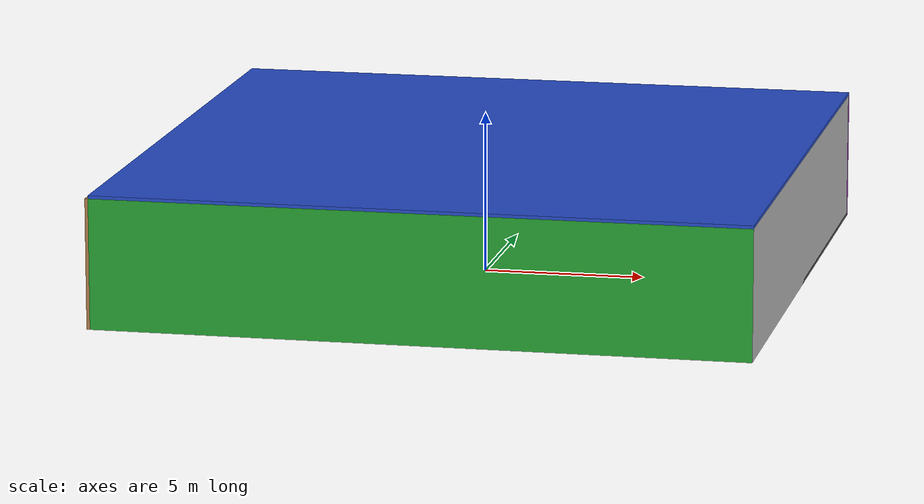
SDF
<sdf version="1.4">
 <world name="default">
  <physics type="ode">
   <max_step_size>0.001</max_step_size>
   <real_time_factor>1</real_time_factor>
   <real_time_update_rate>1000</real_time_update_rate>
   <gravity>0 0 -9.8</gravity>
  </physics>
  <scene><ambient>0.4 0.4 0.4 1</ambient><background>0.7 0.7 0.7 1</background><shadows>1</shadows></scene>
  <model name="Surrounding">
   <static>1</static>
   <link name="Ceiling">
    <collision name="Ceiling_Collision"><geometry><box><size>20 20 0.1</size></box></geometry></collision>
    <visual name="Ceiling_Visual">
     <geometry><box><size>20 20 0.1</size></box></geometry>
     <material>
      <script><uri>file://media/materials/scripts/gazebo.material</uri><name>Gazebo/BlueLaser</name></script>
     </material>
    </visual>
    <pose>0 0 4.05 0 0 0</pose>
   </link>
   <link name="Wall_South">
    <collision name="Wall_South_Collision">
     <geometry><box><size>20 0 4</size></box></geometry>
     <pose>0 0 2 0 -0 0</pose>
    </collision>
    <visual name="Wall_South_Visual">
     <pose>0 0 2 0 -0 0</pose>
     <geometry><box><size>20 0 4</size></box></geometry>
     <material>
      <script><uri>file://media/materials/scripts/gazebo.material</uri><name>Gazebo/GreenGlow</name></script>
     </material>
    </visual>
    <velocity_decay><linear>0</linear><angular>0</angular></velocity_decay>
    <pose>0 -10 0 0 -0 0</pose>
   </link>
   <link name="Wall_East">
    <collision name="Wall_21_Collision">
     <geometry><box><size>20 0 4</size></box></geometry>
     <pose>0 0 2 0 -0 0</pose>
    </collision>
    <visual name="Wall_21_Visual">
     <pose>0 0 2 0 -0 0</pose>
     <geometry><box><size>20 0 4</size></box></geometry>
     <material>
      <script><uri>file://media/materials/scripts/gazebo.material</uri><name>Gazebo/JointAnchor</name></script>
     </material>
    </visual>
    <velocity_decay><linear>0</linear><angular>0</angular></velocity_decay>
    <pose>10 0 0 0 -0 1.5708</pose>
   </link>
   <link name="Wall_North">
    <collision name="Wall_22_Collision">
     <geometry><box><size>20 0.2 4</size></box></geometry>
     <pose>0 0 2 0 -0 0</pose>
    </collision>
    <visual name="Wall_22_Visual">
     <pose>0 0 2 0 -0 0</pose>
     <geometry><box><size>20 0.2 4</size></box></geometry>
     <material>
      <script><uri>file://media/materials/scripts/gazebo.material</uri><name>Gazebo/Purple</name></script>
     </material>
    </visual>
    <velocity_decay><linear>0</linear><angular>0</angular></velocity_decay>
    <pose>0 10 0 0 -0 0</pose>
   </link>
   <link name="Wall_West">
    <collision name="Wall_23_Collision">
     <geometry><box><size>20 0.2 4</size></box></geometry>
     <pose>0 0 2 0 -0 0</pose>
    </collision>
    <visual name="Wall_23_Visual">
     <pose>0 0 2 0 -0 0</pose>
     <geometry><box><size>20 0.2 4</size></box></geometry>
     <material>
      <script><uri>file://media/materials/scripts/gazebo.material</uri><name>Gazebo/WoodPallet</name></script>
     </material>
    </visual>
    <velocity_decay><linear>0</linear><angular>0</angular></velocity_decay>
    <pose>-10 0 0 0 0 -1.5708</pose>
   </link>
   <link name="Ground_link">
    <collision name="collision">
     <pose>0 0 .05 0 -0 0</pose>
     <geometry><box><size>20 20 0.1</size></box></geometry>
    </collision>
    <visual name="visual">
     <pose>0 0 .05 0 -0 0</pose>
     <geometry><box><size>20 20 0.1</size></box></geometry>
     <material>
      <script><uri>file://media/materials/scripts/gazebo.material</uri><name>Gazebo/DarkGrey</name></script>
     </material>
    </visual>
   </link>
   <static>1</static>
  </model>
  <spherical_coordinates>
   <surface_model>EARTH_WGS84</surface_model>
   <latitude_deg>0</latitude_deg>
   <longitude_deg>0</longitude_deg>
   <elevation>0</elevation>
   <heading_deg>0</heading_deg>
  </spherical_coordinates>
  <light name="lightball_0" type="diffuse">
   <diffuse>0.8 0.8 0.8 1</diffuse>
   <specular>0.2 0.2 0.2 1</specular>
   <attenuation>
    <range>100</range>
    <constant>0.7</constant>
    <linear>0.01</linear>
    <quadratic>0.001</quadratic>
   </attenuation>
   <direction>-0.5 0.1 -0.9</direction>
   <pose>8.04234925313 -6.18196817309 0.592528082619 0 0 0</pose>
  </light>
  <light name="lightball_1" type="diffuse">
   <diffuse>0.8 0.8 0.8 1</diffuse>
   <specular>0.2 0.2 0.2 1</specular>
   <attenuation>
    <range>100</range>
    <constant>0.7</constant>
    <linear>0.01</linear>
    <quadratic>0.001</quadratic>
   </attenuation>
   <direction>-0.5 0.1 -0.9</direction>
   <pose>-0.328286232774 -9.615852265 0.501605651788 0 0 0</pose>
  </light>
  <light name="lightball_2" type="diffuse">
   <diffuse>0.8 0.8 0.8 1</diffuse>
   <specular>0.2 0.2 0.2 1</specular>
   <attenuation>
    <range>100</range>
    <constant>0.7</constant>
    <linear>0.01</linear>
    <quadratic>0.001</quadratic>
   </attenuation>
   <direction>-0.5 0.1 -0.9</direction>
   <pose>7.8483288481 9.09184382993 1.20365020884 0 0 0</pose>
  </light>
  <light name="lightball_3" type="diffuse">
   <diffuse>0.8 0.8 0.8 1</diffuse>
   <specular>0.2 0.2 0.2 1</specular>
   <attenuation>
    <range>100</range>
    <constant>0.7</constant>
    <linear>0.01</linear>
    <quadratic>0.001</quadratic>
   </attenuation>
   <direction>-0.5 0.1 -0.9</direction>
   <pose>5.09718882515 2.84147329116 3.00360126933 0 0 0</pose>
  </light>
  <light name="lightball_4" type="diffuse">
   <diffuse>0.8 0.8 0.8 1</diffuse>
   <specular>0.2 0.2 0.2 1</specular>
   <attenuation>
    <range>100</range>
    <constant>0.7</constant>
    <linear>0.01</linear>
    <quadratic>0.001</quadratic>
   </attenuation>
   <direction>-0.5 0.1 -0.9</direction>
   <pose>0.881539128223 -7.39379150377 1.44206439902 0 0 0</pose>
  </light>
  <light name="lightball_5" type="diffuse">
   <diffuse>0.8 0.8 0.8 1</diffuse>
   <specular>0.2 0.2 0.2 1</specular>
   <attenuation>
    <range>100</range>
    <constant>0.7</constant>
    <linear>0.01</linear>
    <quadratic>0.001</quadratic>
   </attenuation>
   <direction>-0.5 0.1 -0.9</direction>
   <pose>-2.15187290237 -3.31463552423 1.10963583312 0 0 0</pose>
  </light>
  <light name="lightball_6" type="diffuse">
   <diffuse>0.8 0.8 0.8 1</diffuse>
   <specular>0.2 0.2 0.2 1</specular>
   <attenuation>
    <range>100</range>
    <constant>0.7</constant>
    <linear>0.01</linear>
    <quadratic>0.001</quadratic>
   </attenuation>
   <direction>-0.5 0.1 -0.9</direction>
   <pose>-0.0973753248905 -1.87381086992 0.611116247199 0 0 0</pose>
  </light>
  <light name="lightball_7" type="diffuse">
   <diffuse>0.8 0.8 0.8 1</diffuse>
   <specular>0.2 0.2 0.2 1</specular>
   <attenuation>
    <range>100</range>
    <constant>0.7</constant>
    <linear>0.01</linear>
    <quadratic>0.001</quadratic>
   </attenuation>
   <direction>-0.5 0.1 -0.9</direction>
   <pose>8.73451979185 3.37626144194 1.75066538609 0 0 0</pose>
  </light>
  <light name="lightball_8" type="diffuse">
   <diffuse>0.8 0.8 0.8 1</diffuse>
   <specular>0.2 0.2 0.2 1</specular>
   <attenuation>
    <range>100</range>
    <constant>0.7</constant>
    <linear>0.01</linear>
    <quadratic>0.001</quadratic>
   </attenuation>
   <direction>-0.5 0.1 -0.9</direction>
   <pose>4.27509550815 -5.91067874759 3.28310215918 0 0 0</pose>
  </light>
  <light name="lightball_9" type="diffuse">
   <diffuse>0.8 0.8 0.8 1</diffuse>
   <specular>0.2 0.2 0.2 1</specular>
   <attenuation>
    <range>100</range>
    <constant>0.7</constant>
    <linear>0.01</linear>
    <quadratic>0.001</quadratic>
   </attenuation>
   <direction>-0.5 0.1 -0.9</direction>
   <pose>-0.47515363637 -2.21777360261 3.37894871717 0 0 0</pose>
  </light>
  <light name="lightball_10" type="diffuse">
   <diffuse>0.8 0.8 0.8 1</diffuse>
   <specular>0.2 0.2 0.2 1</specular>
   <attenuation>
    <range>100</range>
    <constant>0.7</constant>
    <linear>0.01</linear>
    <quadratic>0.001</quadratic>
   </attenuation>
   <direction>-0.5 0.1 -0.9</direction>
   <pose>7.97524922605 8.68853240571 0.650423079249 0 0 0</pose>
  </light>
  <light name="lightball_11" type="diffuse">
   <diffuse>0.8 0.8 0.8 1</diffuse>
   <specular>0.2 0.2 0.2 1</specular>
   <attenuation>
    <range>100</range>
    <constant>0.7</constant>
    <linear>0.01</linear>
    <quadratic>0.001</quadratic>
   </attenuation>
   <direction>-0.5 0.1 -0.9</direction>
   <pose>8.14147591933 2.47538208191 1.10140330261 0 0 0</pose>
  </light>
  <light name="lightball_12" type="diffuse">
   <diffuse>0.8 0.8 0.8 1</diffuse>
   <specular>0.2 0.2 0.2 1</specular>
   <attenuation>
    <range>100</range>
    <constant>0.7</constant>
    <linear>0.01</linear>
    <quadratic>0.001</quadratic>
   </attenuation>
   <direction>-0.5 0.1 -0.9</direction>
   <pose>8.85453189995 -5.23535720602 3.10925568855 0 0 0</pose>
  </light>
  <include>
   <uri>model://construction_cone</uri>
   <pose>-5.6625402436 5.03587895666 0 0 0 0.591510456427</pose>
  </include>
  <include>
   <uri>model://textured_shapes</uri>
   <pose>-1.67091684999 -1.36673380522 0 0 0 3.03539003693</pose>
  </include>
  <include><uri>model://cabinet</uri><pose>1.03652201654 1.15277276603 0 0 0 2.66293542542</pose></include>
 </world>
</sdf>

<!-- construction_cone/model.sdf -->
<sdf version="1.5">
  <model name="Construction Cone">
    <link name="link">
      <collision name="collision">
        <geometry>
          <mesh>
            <scale>10 10 10</scale>
            <uri>file://isr-testbed/construction_cone/meshes/construction_cone.dae</uri>
          </mesh>
        </geometry>
      </collision>
      <visual name="visual">
        <geometry>
          <mesh>
            <scale>10 10 10</scale>
            <uri>file://isr-testbed/construction_cone/meshes/construction_cone.dae</uri>
          </mesh>
        </geometry>
      </visual>
    </link>
  </model>
</sdf>

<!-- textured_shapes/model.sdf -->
<sdf version="1.6">
  <model name="textured_shapes">
    <pose>0 0 0.5 0 0 0</pose>
    <link name="box">
      <pose>0 -1.5 0 0 0 0</pose>
      <collision name="collision">
        <geometry>
          <box>
            <size>1 1 1</size>
          </box>
        </geometry>
      </collision>
      <visual name="visual">
        <geometry>
          <box>
            <size>1 1 1</size>
          </box>
        </geometry>
        <material>
          <script>
            <uri>model://../model_source/models/textured_shapes/materials/scripts</uri>
            <uri>model://../model_source/models/textured_shapes/materials/textures</uri>
            <name>TexturedShape/Squares</name>
          </script>
        </material>
      </visual>
    </link>
    <link name="sphere">
      <collision name="collision">
        <geometry>
          <sphere>
            <radius>0.5</radius>
          </sphere>
        </geometry>
      </collision>
      <visual name="visual">
        <geometry>
          <sphere>
            <radius>0.5</radius>
          </sphere>
        </geometry>
        <material>
          <script>
            <uri>model://../model_source/models/textured_shapes/materials/scripts</uri>
            <uri>model://../model_source/models/textured_shapes/materials/textures</uri>
            <name>TexturedShape/Squares</name>
          </script>
        </material>
      </visual>
    </link>
    <link name="cylinder">
      <pose>0 1.5 0 0 0 0</pose>
      <collision name="collision">
        <geometry>
          <cylinder>
            <radius>0.5</radius>
            <length>1</length>
          </cylinder>
        </geometry>
      </collision>
      <visual name="visual">
        <geometry>
          <cylinder>
            <radius>0.5</radius>
            <length>1</length>
          </cylinder>
        </geometry>
        <material>
          <script>
            <uri>model://../model_source/models/textured_shapes/materials/scripts</uri>
            <uri>model://../model_source/models/textured_shapes/materials/textures</uri>
            <name>TexturedShape/Squares</name>
          </script>
        </material>
      </visual>
    </link>
  </model>
</sdf>

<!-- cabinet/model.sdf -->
<sdf version="1.5">
  <model name="cabinet">
    <static>true</static>
    <link name="cabinet_bottom_plate">
      <inertial>
        <pose>0 0 -1 0 0 0</pose>
        <inertia>
          <ixx>2.050000</ixx>
          <ixy>0</ixy>
          <ixz>0</ixz>
          <iyy>2.050000</iyy>
          <iyz>0</iyz>
          <izz>2.050000</izz>
        </inertia>
        <mass>25.000000</mass>
      </inertial>
      <collision name="cabinet_bottom_plate_geom">
        <pose>0 0 0.010000 0 0 0</pose>
        <geometry>
          <box>
            <size>0.450000 0.450000 0.020000</size>
          </box>
        </geometry>
      </collision>
      <visual name="cabinet_bottom_plate_geom_visual">
        <pose>0 0 0.010000 0 0 0</pose>
        <geometry>
          <box>
            <size>0.450000 0.450000 0.020000</size>
          </box>
        </geometry>
        <material>
          <script>
            <uri>model://media/materials/scripts/gazebo.material</uri>
            <name>Gazebo/Wood</name>
          </script>
        </material>
      </visual>
      <collision name="cabinet_bottom_plate_geom_cabinet_back_plate">
        <pose>0.235000 0 0.510000 0 0 0</pose>
        <geometry>
          <box>
            <size>0.020000 0.450000 1.020000</size>
          </box>
        </geometry>
      </collision>
      <visual name="cabinet_bottom_plate_geom_cabinet_back_plate_visual">
        <pose>0.235000 0 0.510000 0 0 0</pose>
        <geometry>
          <box>
            <size>0.020000 0.450000 1.020000</size>
          </box>
        </geometry>
        <material>
          <script>
            <uri>model://media/materials/scripts/gazebo.material</uri>
            <name>Gazebo/Wood</name>
          </script>
        </material>
      </visual>
      <collision name="cabinet_bottom_plate_geom_cabinet_left_plate">
        <pose>0 0.235000 0.510000 0 0 0</pose>
        <geometry>
          <box>
            <size>0.450000 0.020000 1.020000</size>
          </box>
        </geometry>
      </collision>
      <visual name="cabinet_bottom_plate_geom_cabinet_left_plate_visual">
        <pose>0 0.235000 0.510000 0 0 0</pose>
        <geometry>
          <box>
            <size>0.450000 0.020000 1.020000</size>
          </box>
        </geometry>
        <material>
          <script>
            <uri>model://media/materials/scripts/gazebo.material</uri>
            <name>Gazebo/Wood</name>
          </script>
        </material>
      </visual>
      <collision name="cabinet_bottom_plate_geom_cabinet_middle_plate">
        <pose>0 0 0.510000 0 0 0</pose>
        <geometry>
          <box>
            <size>0.450000 0.450000 0.020000</size>
          </box>
        </geometry>
      </collision>
      <visual name="cabinet_bottom_plate_geom_cabinet_middle_plate_visual">
        <pose>0 0 0.510000 0 0 0</pose>
        <geometry>
          <box>
            <size>0.450000 0.450000 0.020000</size>
          </box>
        </geometry>
        <material>
          <script>
            <uri>model://media/materials/scripts/gazebo.material</uri>
            <name>Gazebo/Wood</name>
          </script>
        </material>
      </visual>
      <collision name="cabinet_bottom_plate_geom_cabinet_right_plate">
        <pose>0 -0.235000 0.510000 0 0 0</pose>
        <geometry>
          <box>
            <size>0.450000 0.020000 1.020000</size>
          </box>
        </geometry>
      </collision>
      <visual name="cabinet_bottom_plate_geom_cabinet_right_plate_visual">
        <pose>0 -0.235000 0.510000 0 0 0</pose>
        <geometry>
          <box>
            <size>0.450000 0.020000 1.020000</size>
          </box>
        </geometry>
        <material>
          <script>
            <uri>model://media/materials/scripts/gazebo.material</uri>
            <name>Gazebo/Wood</name>
          </script>
        </material>
      </visual>
      <collision name="cabinet_bottom_plate_geom_cabinet_top_plate">
        <pose>0 0 1.010000 0 0 0</pose>
        <geometry>
          <box>
            <size>0.450000 0.450000 0.020000</size>
          </box>
        </geometry>
      </collision>
      <visual name="cabinet_bottom_plate_geom_cabinet_top_plate_visual">
        <pose>0 0 1.010000 0 0 0</pose>
        <geometry>
          <box>
            <size>0.450000 0.450000 0.020000</size>
          </box>
        </geometry>
        <material>
          <script>
            <uri>model://media/materials/scripts/gazebo.material</uri>
            <name>Gazebo/Wood</name>
          </script>
        </material>
      </visual>
    </link>
  </model>
</sdf>
